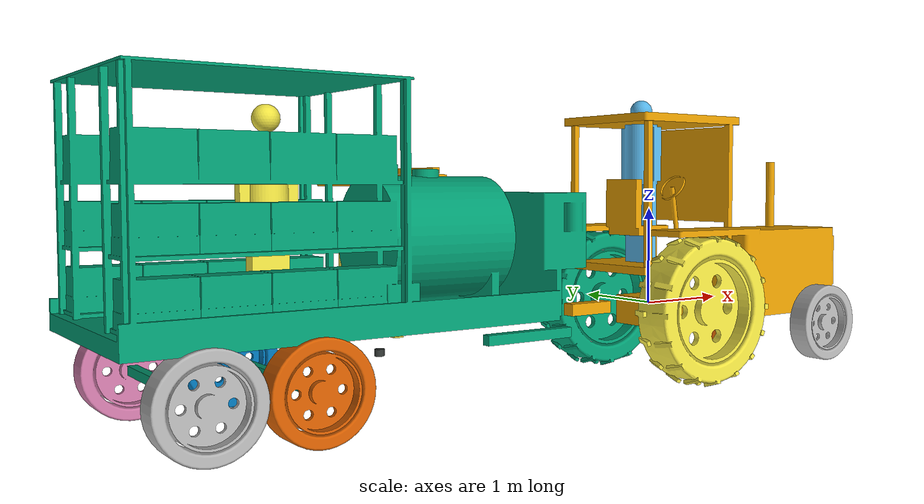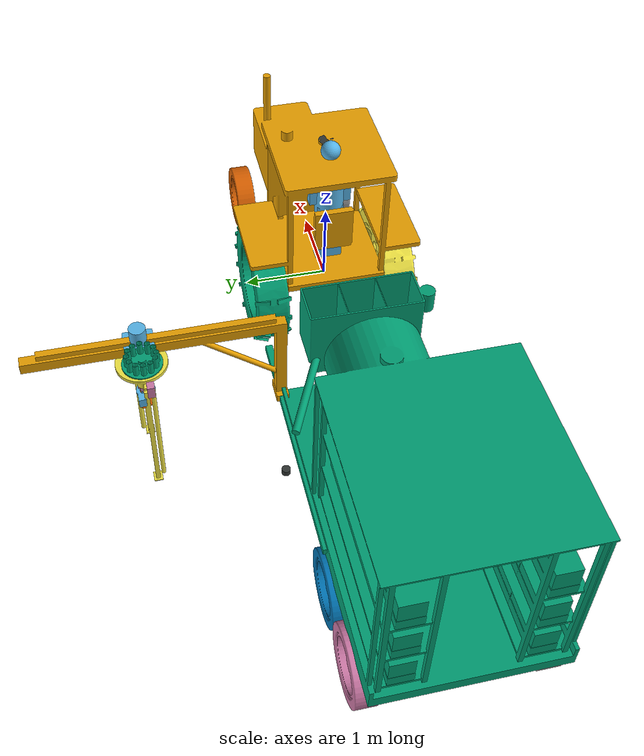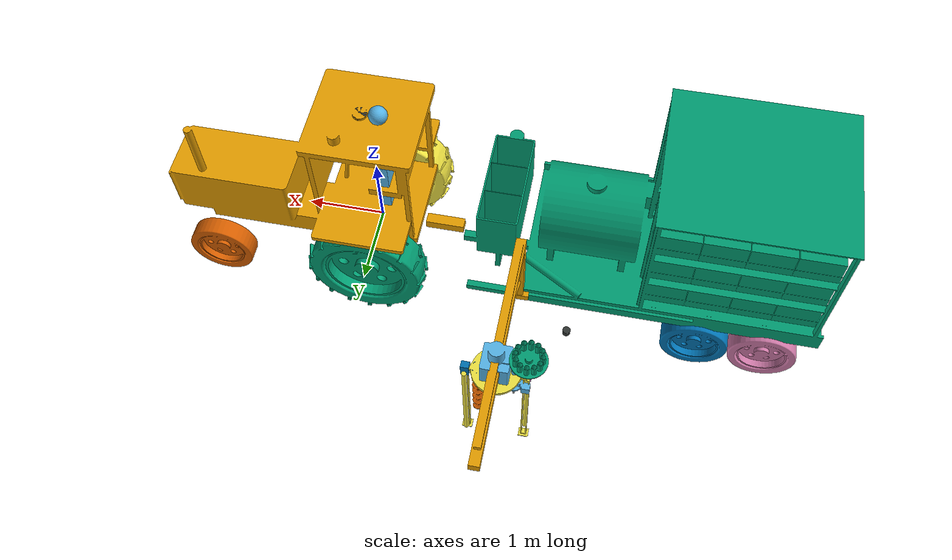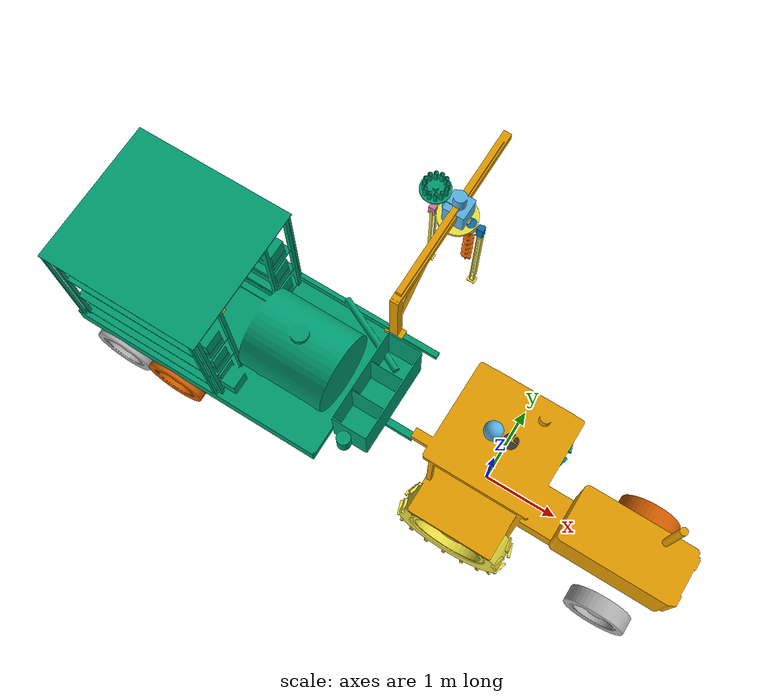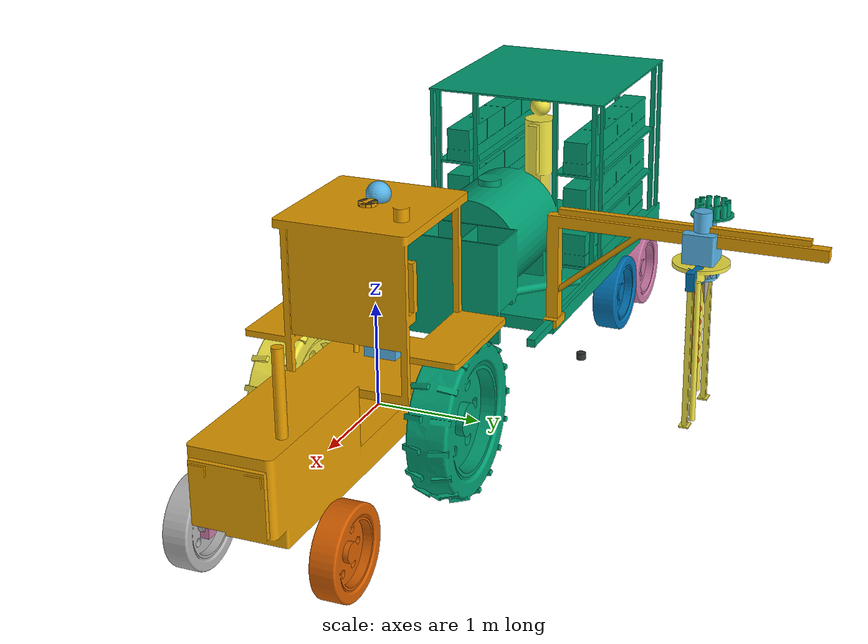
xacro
<?xml version="1.0"?>
<robot name="katar" xmlns:xacro="http://www.ros.org/wiki/xacro">
  <xacro:arg name="ns" default="katar"/>
  <xacro:arg name="soil_map" default=""/>
  <xacro:arg name="gnss_sigma" default="0.02"/>
  <xacro:arg name="inspect_cam" default="false"/>
  <xacro:arg name="deep_auger" default="false"/>
  <xacro:property name="deep" value="${'$(arg deep_auger)' in ('true', 'True', '1')}"/>
  <xacro:property name="auger_len" value="${1.45 if deep else 0.95}"/>
  <xacro:property name="auger_stroke" value="${1.5 if deep else 1.3}"/>
  <xacro:property name="ns" value="$(arg ns)"/>
  <xacro:property name="R" value="katar"/>
  <xacro:include filename="$(find fs_description)/urdf/common.xacro"/>

  <!-- ===================== tractor ===================== -->
  <link name="base_link">
    <xacro:box_inertial m="2200" x="3.2" y="1.6" z="1.4"><origin xyz="0.9 0 0.15"/></xacro:box_inertial>
    <xacro:cbox xyz="1.3 0 0.12" size="3.0 0.8 0.75"/>
    <xacro:mesh_visual robot="${R}" link="base_link"/>
  </link>
  <xacro:person parent="base_link" name="driver" xyz="-0.12 0 0.44" robot="${R}"/>
  <xacro:wheel effort="7000" name="rear_left_wheel" parent="base_link" xyz="0 0.8 0" r="0.72" w="0.4" m="120" robot="${R}"/>
  <xacro:wheel effort="7000" name="rear_right_wheel" parent="base_link" xyz="0 -0.8 0" r="0.72" w="0.4" m="120" robot="${R}"/>
  <xacro:macro name="steered_front" params="side y">
    <joint name="front_${side}_steer_joint" type="revolute">
      <parent link="base_link"/><child link="front_${side}_steer_link"/>
      <origin xyz="2.05 ${y} -0.30"/><axis xyz="0 0 1"/>
      <limit lower="-0.6" upper="0.6" effort="4000" velocity="1.0"/>
    </joint>
    <link name="front_${side}_steer_link">
      <inertial><mass value="10"/><inertia ixx="0.1" iyy="0.1" izz="0.1" ixy="0" ixz="0" iyz="0"/></inertial>
      <xacro:mesh_visual robot="${R}" link="front_${side}_steer_link"/>
    </link>
    <xacro:wheel effort="50" name="front_${side}_wheel" parent="front_${side}_steer_link" xyz="0 0 0" r="0.42" w="0.24" m="40" robot="${R}"/>
  </xacro:macro>
  <xacro:steered_front side="left" y="0.68"/>
  <xacro:steered_front side="right" y="-0.68"/>
  <xacro:gnss ns="${ns}" parent="base_link" xyz="0.1 0 2.0" sigma="$(arg gnss_sigma)"/>
  <xacro:imu ns="${ns}" name="imu" parent="base_link" xyz="0.3 0 0.2"/>

  <!-- ===================== trailer ===================== -->
  <joint name="hitch_joint" type="revolute">
    <parent link="base_link"/><child link="trailer_link"/>
    <origin xyz="-1.15 0 -0.22"/><axis xyz="0 0 1"/>
    <limit lower="-1.2" upper="1.2" effort="1000" velocity="2"/><dynamics damping="20"/>
  </joint>
  <link name="trailer_link">
    <!-- 1,400 kg frame, half-full 1,000 L tank, 24 trays, racks, loader -->
    <xacro:box_inertial m="2400" x="4.0" y="2.0" z="1.5"><origin xyz="-2.4 0 0.75"/></xacro:box_inertial>
    <xacro:cbox xyz="-2.7 0 0.36" size="3.7 2.0 0.3"/>
    <xacro:cbox xyz="-1.6 0 1.0" size="1.2 1.1 1.1"/>
    <xacro:mesh_visual robot="${R}" link="trailer_link"/>
  </link>
  <xacro:person parent="trailer_link" name="loader" xyz="-3.1 0 0.43" rpy="0 0 ${PI/2}" robot="${R}"/>
  <xacro:wheel effort="50" name="trailer_fl_wheel" parent="trailer_link" xyz="-3.1 0.93 -0.08" r="0.42" w="0.26" m="30" robot="${R}"/>
  <xacro:wheel effort="50" name="trailer_fr_wheel" parent="trailer_link" xyz="-3.1 -0.93 -0.08" r="0.42" w="0.26" m="30" robot="${R}"/>
  <xacro:wheel effort="50" name="trailer_rl_wheel" parent="trailer_link" xyz="-3.95 0.93 -0.08" r="0.42" w="0.26" m="30" robot="${R}"/>
  <xacro:wheel effort="50" name="trailer_rr_wheel" parent="trailer_link" xyz="-3.95 -0.93 -0.08" r="0.42" w="0.26" m="30" robot="${R}"/>

  <!-- ===================== boom ===================== -->
  <joint name="sled_joint" type="prismatic">
    <parent link="trailer_link"/><child link="sled_link"/>
    <origin xyz="-0.85 1.0 0.45"/><axis xyz="1 0 0"/>
    <limit lower="-1.8" upper="0.6" effort="20000" velocity="1.0"/><dynamics damping="200"/>
  </joint>
  <link name="sled_link">
    <xacro:box_inertial m="150" x="0.3" y="2.7" z="1.2"><origin xyz="0 0.8 0.8"/></xacro:box_inertial>
    <xacro:mesh_visual robot="${R}" link="sled_link"/>
  </link>
  <joint name="carriage_joint" type="prismatic">
    <parent link="sled_link"/><child link="carriage_link"/>
    <origin xyz="0 0 1.0"/><axis xyz="0 1 0"/>
    <limit lower="0.5" upper="2.5" effort="20000" velocity="0.8"/><dynamics damping="200"/>
  </joint>
  <link name="carriage_link">
    <xacro:box_inertial m="60" x="0.32" y="0.32" z="0.3"><origin xyz="0 0 0"/></xacro:box_inertial>
    <xacro:mesh_visual robot="${R}" link="carriage_link"/>
  </link>
  <joint name="carousel_joint" type="continuous">
    <parent link="carriage_link"/><child link="carousel_link"/>
    <origin xyz="-0.35 0 0.2"/><axis xyz="0 0 1"/><limit effort="200" velocity="3"/><dynamics damping="1"/>
  </joint>
  <link name="carousel_link">
    <inertial><mass value="4"/><inertia ixx="0.05" iyy="0.05" izz="0.09" ixy="0" ixz="0" iyz="0"/></inertial>
    <xacro:mesh_visual robot="${R}" link="carousel_link"/>
  </link>
  <joint name="turret_joint" type="revolute">
    <parent link="carriage_link"/><child link="turret_link"/>
    <origin xyz="0 0 -0.18"/><axis xyz="0 0 1"/>
    <limit lower="-0.2" upper="3.5" effort="2000" velocity="3"/><dynamics damping="5"/>
  </joint>
  <link name="turret_link">
    <inertial><mass value="25"/><inertia ixx="0.5" iyy="0.5" izz="0.9" ixy="0" ixz="0" iyz="0"/></inertial>
    <xacro:mesh_visual robot="${R}" link="turret_link"/>
  </link>
  <xacro:auger_head robot="${R}" parent="turret_link" xyz="0.2 0 -0.06" length="${auger_len}" stroke="${auger_stroke}"
                    mesh="${'auger_link_deep' if deep else 'auger_link'}"/>
  <xacro:duckbill_head robot="${R}" parent="turret_link" xyz="-0.2 0 -0.06" stroke="1.6" tamp_xyz="-0.2 0 -0.20" tamp_stroke="1.6"/>

  <!-- boom-side lidar, 0.3 m above ground, watching the strip the boom works in -->
  <xacro:lidar2d ns="${ns}" parent="trailer_link" xyz="-1.5 1.08 -0.2" rpy="0 0 1.5708"/>

  <xacro:if value="$(arg inspect_cam)">
    <!-- rides on the boom carriage so the head stays in frame -->
    <xacro:inspect_camera ns="${ns}" parent="carriage_link" xyz="0.0 3.0 -0.8" rpy="0 0.0 -1.5708" hfov="1.2"/>
  </xacro:if>

  <!-- ===================== Gazebo systems ===================== -->
  <gazebo>
    <plugin filename="gz-sim-ackermann-steering-system" name="gz::sim::systems::AckermannSteering">
      <left_joint>rear_left_wheel_joint</left_joint>
      <right_joint>rear_right_wheel_joint</right_joint>
      <left_steering_joint>front_left_steer_joint</left_steering_joint>
      <right_steering_joint>front_right_steer_joint</right_steering_joint>
      <kingpin_width>1.36</kingpin_width><steering_limit>0.55</steering_limit>
      <wheel_base>2.05</wheel_base><wheel_separation>1.6</wheel_separation><wheel_radius>0.72</wheel_radius>
      <min_velocity>-1.5</min_velocity><max_velocity>2.5</max_velocity>
      <min_acceleration>-1.2</min_acceleration><max_acceleration>0.5</max_acceleration>
      <topic>/model/${ns}/cmd_vel</topic>
      <odom_topic>/model/${ns}/odometry</odom_topic>
      <tf_topic>/model/${ns}/odometry_tf</tf_topic>
      <frame_id>${ns}/odom</frame_id><child_frame_id>${ns}/base_link</child_frame_id>
      <odom_publish_frequency>30</odom_publish_frequency>
    </plugin>
    <xacro:common_plugins ns="${ns}"/>
    <xacro:pos_controller ns="${ns}" joint="sled_joint" p="2.5" vmax="0.9" init="0.0"/>
    <xacro:pos_controller ns="${ns}" joint="carriage_joint" p="2.5" vmax="0.6" init="1.5"/>
    <xacro:pos_controller ns="${ns}" joint="turret_joint" p="4" vmax="2.0" init="0.0"/>
    <xacro:pos_controller ns="${ns}" joint="carousel_joint" p="4" vmax="2.0" init="0.0"/>
    <xacro:pos_controller ns="${ns}" joint="duckbill_feed_joint" p="6" vmax="1.0" init="0.0"/>
    <xacro:pos_controller ns="${ns}" joint="jaw_l_joint" p="6" vmax="2.0" init="0.0"/>
    <xacro:pos_controller ns="${ns}" joint="jaw_r_joint" p="6" vmax="2.0" init="0.0"/>
    <xacro:pos_controller ns="${ns}" joint="tamp_joint" p="6" vmax="1.0" init="0.0"/>
    <plugin filename="fs_terramechanics_system" name="fs::Terramechanics">
      <soil_map>$(arg soil_map)</soil_map>
      <topic>/model/${ns}/terramechanics</topic>
      <xacro:tm_wheel link="rear_left_wheel_link" r="0.72" b="0.40" l="0.36"/>
      <xacro:tm_wheel link="rear_right_wheel_link" r="0.72" b="0.40" l="0.36"/>
      <xacro:tm_wheel link="front_left_wheel_link" r="0.42" b="0.24" l="0.2"/>
      <xacro:tm_wheel link="front_right_wheel_link" r="0.42" b="0.24" l="0.2"/>
      <xacro:tm_wheel link="trailer_fl_wheel_link" r="0.42" b="0.26" l="0.2"/>
      <xacro:tm_wheel link="trailer_fr_wheel_link" r="0.42" b="0.26" l="0.2"/>
      <xacro:tm_wheel link="trailer_rl_wheel_link" r="0.42" b="0.26" l="0.2"/>
      <xacro:tm_wheel link="trailer_rr_wheel_link" r="0.42" b="0.26" l="0.2"/>
    </plugin>
    <plugin filename="fs_auger_soil_system" name="fs::AugerSoil">
      <soil_map>$(arg soil_map)</soil_map>
      <feed_joint>auger_feed_joint</feed_joint><spin_joint>auger_spin_joint</spin_joint>
      <tip_link>auger_link</tip_link><reaction_link>turret_link</reaction_link><tip_offset>0 0 -${auger_len}</tip_offset><tool_axis>0 0 -1</tool_axis>
      <diameter>0.15</diameter><max_power>8000</max_power><efficiency>0.75</efficiency>
      <max_thrust>8000</max_thrust><max_feed>0.15</max_feed><rpm>90</rpm><max_stroke>${auger_stroke}</max_stroke>
      <free_speed>0.5</free_speed><retract_speed>0.6</retract_speed>
      <cmd_topic>/model/${ns}/auger/cmd</cmd_topic><status_topic>/model/${ns}/auger/status</status_topic>
    </plugin>
    <plugin filename="fs_plug_inventory_system" name="fs::PlugInventory">
      <xacro:plug_inventory_begin ns="${ns}"/>
      <!-- 12 carousel cups at r 0.15 m; cup 0 sits over the chute (carousel +x) -->
      <carrier><name>carousel</name><link>carousel_link</link><ring><radius>0.15</radius><count>12</count><tiers>1</tiers><z0>0.008</z0><dz>0</dz></ring><fill>12</fill></carrier>
      <holder><name>duckbill</name><link>duckbill_feed_link</link><xyz>0 0 -0.40</xyz></holder>
    </plugin>
  </gazebo>
</robot>

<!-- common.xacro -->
<!--
  Shared macros for the ForestStark robots: inertia helpers, materials, wheels, sensors and the
  auger head. Every gz topic is under /model/${ns}/...; fs_bringup's bridge maps them to /${ns}/...
-->
<robot xmlns:xacro="http://www.ros.org/wiki/xacro">

  <xacro:property name="PI" value="3.14159265"/>
  <!-- Wheel/track collisions are nearly frictionless: fs::Terramechanics supplies the soil forces. -->
  <xacro:property name="TYRE_MU" value="0.02"/>

  <material name="fs_yellow"><color rgba="0.886 0.647 0.078 1"/></material>
  <material name="fs_graphite"><color rgba="0.19 0.21 0.20 1"/></material>
  <material name="fs_steel"><color rgba="0.56 0.60 0.61 1"/></material>
  <material name="fs_rubber"><color rgba="0.10 0.11 0.11 1"/></material>
  <material name="fs_blue"><color rgba="0.18 0.42 0.56 1"/></material>
  <material name="fs_leaf"><color rgba="0.31 0.60 0.25 1"/></material>
  <material name="fs_glass"><color rgba="0.66 0.80 0.84 0.35"/></material>
  <material name="fs_solar"><color rgba="0.12 0.20 0.33 1"/></material>
  <material name="fs_skin"><color rgba="0.72 0.50 0.35 1"/></material>
  <material name="fs_cloth"><color rgba="0.23 0.35 0.55 1"/></material>
  <material name="fs_orange"><color rgba="1.0 0.48 0.10 1"/></material>
  <material name="fs_shade"><color rgba="0.21 0.37 0.23 0.6"/></material>

  <xacro:macro name="box_inertial" params="m x y z *origin">
    <inertial>
      <xacro:insert_block name="origin"/>
      <mass value="${m}"/>
      <inertia ixx="${m*(y*y+z*z)/12}" iyy="${m*(x*x+z*z)/12}" izz="${m*(x*x+y*y)/12}" ixy="0" ixz="0" iyz="0"/>
    </inertial>
  </xacro:macro>

  <xacro:macro name="cyl_inertial_y" params="m r l">
    <inertial>
      <mass value="${m}"/>
      <inertia ixx="${m*(3*r*r+l*l)/12}" iyy="${m*r*r/2}" izz="${m*(3*r*r+l*l)/12}" ixy="0" ixz="0" iyz="0"/>
    </inertial>
  </xacro:macro>

  <xacro:macro name="vbox" params="xyz size material rpy:='0 0 0'">
    <visual><origin xyz="${xyz}" rpy="${rpy}"/><geometry><box size="${size}"/></geometry><material name="${material}"/></visual>
  </xacro:macro>
  <xacro:macro name="vcyl" params="xyz r l material rpy:='0 0 0'">
    <visual><origin xyz="${xyz}" rpy="${rpy}"/><geometry><cylinder radius="${r}" length="${l}"/></geometry><material name="${material}"/></visual>
  </xacro:macro>
  <xacro:macro name="cbox" params="xyz size rpy:='0 0 0'">
    <collision><origin xyz="${xyz}" rpy="${rpy}"/><geometry><box size="${size}"/></geometry></collision>
  </xacro:macro>

  <xacro:macro name="mesh_visual" params="robot link">
    <visual><geometry><mesh filename="file://$(find fs_description)/meshes/${robot}/${link}.obj"/></geometry></visual>
  </xacro:macro>

  <!-- effort: the most torque the drive can put on the wheel, N m (free-rolling wheels: bearing drag only) -->
  <xacro:macro name="wheel" params="name parent xyz r w m rim:=fs_yellow shape:=cylinder robot:='' effort:=6000">
    <joint name="${name}_joint" type="continuous">
      <parent link="${parent}"/><child link="${name}_link"/>
      <origin xyz="${xyz}"/><axis xyz="0 1 0"/>
      <limit effort="${effort}" velocity="40"/><dynamics damping="0.5"/>
    </joint>
    <link name="${name}_link">
      <xacro:cyl_inertial_y m="${m}" r="${r}" l="${w}"/>
      <xacro:if value="${robot != ''}"><xacro:mesh_visual robot="${robot}" link="${name}_link"/></xacro:if>
      <xacro:unless value="${robot != ''}">
        <visual><origin rpy="${PI/2} 0 0"/><geometry><cylinder radius="${r}" length="${w}"/></geometry><material name="fs_rubber"/></visual>
        <visual><origin rpy="${PI/2} 0 0"/><geometry><cylinder radius="${r*0.62}" length="${w*1.04}"/></geometry><material name="${rim}"/></visual>
      </xacro:unless>
      <collision>
        <xacro:if value="${shape == 'sphere'}"><geometry><sphere radius="${r}"/></geometry></xacro:if>
        <xacro:unless value="${shape == 'sphere'}"><origin rpy="${PI/2} 0 0"/><geometry><cylinder radius="${r}" length="${w}"/></geometry></xacro:unless>
      </collision>
    </link>
    <gazebo reference="${name}_link"><mu1>${TYRE_MU}</mu1><mu2>${TYRE_MU}</mu2><kp>2e6</kp><kd>1e4</kd></gazebo>
  </xacro:macro>

  <xacro:macro name="tm_wheel" params="link r b l">
    <wheel><link>${link}</link><radius>${r}</radius><width>${b}</width><contact_length>${l}</contact_length><axis>0 1 0</axis></wheel>
  </xacro:macro>

  <xacro:macro name="gnss" params="ns parent xyz sigma:=0.02">
    <joint name="gnss_joint" type="fixed"><parent link="${parent}"/><child link="gnss_link"/><origin xyz="${xyz}"/></joint>
    <link name="gnss_link">
      <visual><geometry><cylinder radius="0.09" length="0.03"/></geometry><material name="fs_graphite"/></visual>
    </link>
    <gazebo reference="gnss_link">
      <sensor name="gnss" type="navsat">
        <always_on>1</always_on><update_rate>10</update_rate><topic>/model/${ns}/gnss</topic>
        <gz_frame_id>${ns}/gnss_link</gz_frame_id>
        <navsat>
          <position_sensing>
            <!-- gz applies horizontal position noise to latitude/longitude in DEGREES: convert from metres. -->
            <horizontal><noise type="gaussian"><mean>0</mean><stddev>${sigma/111320.0}</stddev></noise></horizontal>
            <vertical><noise type="gaussian"><mean>0</mean><stddev>${sigma*2}</stddev></noise></vertical>
          </position_sensing>
          <velocity_sensing>
            <horizontal><noise type="gaussian"><mean>0</mean><stddev>0.02</stddev></noise></horizontal>
            <vertical><noise type="gaussian"><mean>0</mean><stddev>0.04</stddev></noise></vertical>
          </velocity_sensing>
        </navsat>
      </sensor>
    </gazebo>
  </xacro:macro>

  <xacro:macro name="imu" params="ns name parent xyz">
    <joint name="${name}_joint" type="fixed"><parent link="${parent}"/><child link="${name}_link"/><origin xyz="${xyz}"/></joint>
    <link name="${name}_link"/>
    <gazebo reference="${name}_link">
      <sensor name="${name}" type="imu">
        <always_on>1</always_on><update_rate>100</update_rate><topic>/model/${ns}/${name}</topic>
        <gz_frame_id>${ns}/${name}_link</gz_frame_id>
        <imu>
          <angular_velocity>
            <x><noise type="gaussian"><mean>0</mean><stddev>0.002</stddev><bias_mean>0.0005</bias_mean></noise></x>
            <y><noise type="gaussian"><mean>0</mean><stddev>0.002</stddev><bias_mean>0.0005</bias_mean></noise></y>
            <z><noise type="gaussian"><mean>0</mean><stddev>0.002</stddev><bias_mean>0.0005</bias_mean></noise></z>
          </angular_velocity>
          <linear_acceleration>
            <x><noise type="gaussian"><mean>0</mean><stddev>0.02</stddev></noise></x>
            <y><noise type="gaussian"><mean>0</mean><stddev>0.02</stddev></noise></y>
            <z><noise type="gaussian"><mean>0</mean><stddev>0.02</stddev></noise></z>
          </linear_acceleration>
        </imu>
      </sensor>
    </gazebo>
  </xacro:macro>

  <!-- Planar safety lidar. Needs rendering (gpu_lidar); off with lidar:=false. -->
  <!-- Planar lidar. name/topic let one robot carry several (Jaal front and rear). -->
  <xacro:macro name="lidar2d" params="ns parent xyz rpy:='0 0 0' name:=lidar topic:=scan fov:=4.71 samples:=540 max_range:=20.0">
    <joint name="${name}_joint" type="fixed"><parent link="${parent}"/><child link="${name}_link"/><origin xyz="${xyz}" rpy="${rpy}"/></joint>
    <link name="${name}_link">
      <visual><geometry><cylinder radius="0.05" length="0.07"/></geometry><material name="fs_graphite"/></visual>
    </link>
    <gazebo reference="${name}_link">
      <sensor name="${name}" type="gpu_lidar">
        <always_on>1</always_on><update_rate>10</update_rate><topic>/model/${ns}/${topic}</topic>
        <gz_frame_id>${ns}/${name}_link</gz_frame_id>
        <lidar>
          <scan><horizontal><samples>${samples}</samples><resolution>1</resolution>
            <min_angle>${-fov/2}</min_angle><max_angle>${fov/2}</max_angle></horizontal></scan>
          <range><min>0.3</min><max>${max_range}</max><resolution>0.01</resolution></range>
          <noise type="gaussian"><mean>0</mean><stddev>0.01</stddev></noise>
        </lidar>
      </sensor>
    </gazebo>
  </xacro:macro>

  <!-- Auger head: prismatic feed (positive = down along the tool), spin joint, auger link whose
       origin is at the feed carrier; the bit tip is at feed_axis * length. -->
  <xacro:macro name="auger_head" params="robot parent xyz rpy:='0 0 0' length stroke feed_axis:='0 0 -1' spin_axis:='0 0 1' mesh:='auger_link'">
    <joint name="auger_feed_joint" type="prismatic">
      <parent link="${parent}"/><child link="auger_feed_link"/>
      <origin xyz="${xyz}" rpy="${rpy}"/><axis xyz="${feed_axis}"/>
      <limit lower="0" upper="${stroke}" effort="20000" velocity="0.6"/><dynamics damping="50"/>
    </joint>
    <link name="auger_feed_link">
      <inertial><mass value="8"/><inertia ixx="0.05" iyy="0.05" izz="0.05" ixy="0" ixz="0" iyz="0"/></inertial>
      <xacro:mesh_visual robot="${robot}" link="auger_feed_link"/>
    </link>
    <joint name="auger_spin_joint" type="continuous">
      <parent link="auger_feed_link"/><child link="auger_link"/>
      <axis xyz="${spin_axis}"/><limit effort="3000" velocity="30"/>
    </joint>
    <link name="auger_link">
      <inertial><mass value="10"/><inertia ixx="0.3" iyy="0.3" izz="0.3" ixy="0" ixz="0" iyz="0"/></inertial>
      <xacro:mesh_visual robot="${robot}" link="${mesh}"/>
    </link>
  </xacro:macro>

  <!-- Duckbill planting jaw on a prismatic feed, two hinged half-jaws, tamp ring on its own feed.
       Plugs are carried in the closed jaw; opening it in the hole releases the plug. -->
  <xacro:macro name="duckbill_head" params="robot parent xyz stroke tamp_xyz tamp_stroke">
    <joint name="duckbill_feed_joint" type="prismatic">
      <parent link="${parent}"/><child link="duckbill_feed_link"/>
      <origin xyz="${xyz}"/><axis xyz="0 0 -1"/>
      <limit lower="0" upper="${stroke}" effort="5000" velocity="0.8"/><dynamics damping="30"/>
    </joint>
    <link name="duckbill_feed_link">
      <inertial><origin xyz="0 0 -0.05"/><mass value="6"/><inertia ixx="0.03" iyy="0.03" izz="0.01" ixy="0" ixz="0" iyz="0"/></inertial>
      <xacro:mesh_visual robot="${robot}" link="duckbill_feed_link"/>
    </link>
    <xacro:macro name="jaw" params="side y axis">
      <joint name="jaw_${side}_joint" type="revolute">
        <parent link="duckbill_feed_link"/><child link="jaw_${side}_link"/>
        <origin xyz="0 ${y} -0.10"/><axis xyz="${axis} 0 0"/>
        <limit lower="0" upper="0.6" effort="500" velocity="2"/><dynamics damping="2"/>
      </joint>
      <link name="jaw_${side}_link">
        <inertial><origin xyz="0 0 -0.15"/><mass value="1.5"/><inertia ixx="0.012" iyy="0.012" izz="0.001" ixy="0" ixz="0" iyz="0"/></inertial>
        <xacro:mesh_visual robot="${robot}" link="jaw_${side}_link"/>
      </link>
    </xacro:macro>
    <xacro:jaw side="l" y="0.046" axis="1"/>
    <xacro:jaw side="r" y="-0.046" axis="-1"/>
    <joint name="tamp_joint" type="prismatic">
      <parent link="${parent}"/><child link="tamp_link"/>
      <origin xyz="${tamp_xyz}"/><axis xyz="0 0 -1"/>
      <limit lower="0" upper="${tamp_stroke}" effort="3000" velocity="0.8"/><dynamics damping="30"/>
    </joint>
    <link name="tamp_link">
      <inertial><mass value="3"/><inertia ixx="0.01" iyy="0.01" izz="0.02" ixy="0" ixz="0" iyz="0"/></inertial>
      <xacro:mesh_visual robot="${robot}" link="tamp_link"/>
    </link>
  </xacro:macro>

  <!-- fs::PlugInventory: plugs as visuals riding on their carrier links; see fs_gazebo/src/PlugInventory.cc -->
  <xacro:macro name="plug_inventory_begin" params="ns">
    <plug_mesh>file://$(find fs_description)/meshes/plug.obj</plug_mesh>
    <cmd_topic>/model/${ns}/plugs/cmd</cmd_topic><status_topic>/model/${ns}/plugs/status</status_topic>
  </xacro:macro>

  <xacro:macro name="person" params="parent name xyz robot rpy:='0 0 0'">
    <joint name="${name}_joint" type="fixed"><parent link="${parent}"/><child link="${name}_link"/><origin xyz="${xyz}" rpy="${rpy}"/></joint>
    <link name="${name}_link"><xacro:mesh_visual robot="${robot}" link="${name}_link"/></link>
  </xacro:macro>

  <!-- Optional inspection camera (inspect_cam:=true): saves PNG frames to $(arg inspect_path) so a
       headless run can be looked at afterwards. Needs rendering. -->
  <xacro:arg name="inspect_path" default="/tmp/fs_inspect"/>
  <xacro:macro name="inspect_camera" params="ns parent xyz rpy hfov:=1.1">
    <joint name="inspect_cam_joint" type="fixed"><parent link="${parent}"/><child link="inspect_cam_link"/><origin xyz="${xyz}" rpy="${rpy}"/></joint>
    <link name="inspect_cam_link"/>
    <gazebo reference="inspect_cam_link">
      <sensor name="inspect_cam" type="camera">
        <always_on>1</always_on><update_rate>2</update_rate><topic>/model/${ns}/inspect_cam</topic>
        <camera><horizontal_fov>${hfov}</horizontal_fov><image><width>960</width><height>600</height></image>
          <clip><near>0.05</near><far>60</far></clip>
          <save enabled="true"><path>$(arg inspect_path)</path></save></camera>
      </sensor>
    </gazebo>
  </xacro:macro>

  <!-- Velocity-mode joint position controller: topic /model/${ns}/joint/${joint}/cmd_pos. -->
  <xacro:macro name="pos_controller" params="ns joint p:=2.0 vmax:=0.8 init:=0.0">
    <plugin filename="gz-sim-joint-position-controller-system" name="gz::sim::systems::JointPositionController">
      <joint_name>${joint}</joint_name>
      <topic>/model/${ns}/joint/${joint}/cmd_pos</topic>
      <use_velocity_commands>true</use_velocity_commands>
      <p_gain>${p}</p_gain><i_gain>0</i_gain><d_gain>0</d_gain>
      <cmd_max>${vmax}</cmd_max><cmd_min>${-vmax}</cmd_min>
      <initial_position>${init}</initial_position>
    </plugin>
  </xacro:macro>

  <xacro:macro name="common_plugins" params="ns">
    <plugin filename="fs_joint_state_rate_system" name="fs::JointStateRate">
      <topic>/model/${ns}/joint_states</topic><update_rate>30</update_rate>
    </plugin>
    <!-- Ground truth for evaluation only; the autonomy stack never reads it. -->
    <plugin filename="gz-sim-odometry-publisher-system" name="gz::sim::systems::OdometryPublisher">
      <odom_frame>map</odom_frame><robot_base_frame>${ns}/base_link</robot_base_frame>
      <odom_topic>/model/${ns}/ground_truth</odom_topic><odom_publish_frequency>20</odom_publish_frequency>
      <dimensions>3</dimensions><tf_topic>/model/${ns}/ground_truth_tf</tf_topic>
    </plugin>
  </xacro:macro>
</robot>
